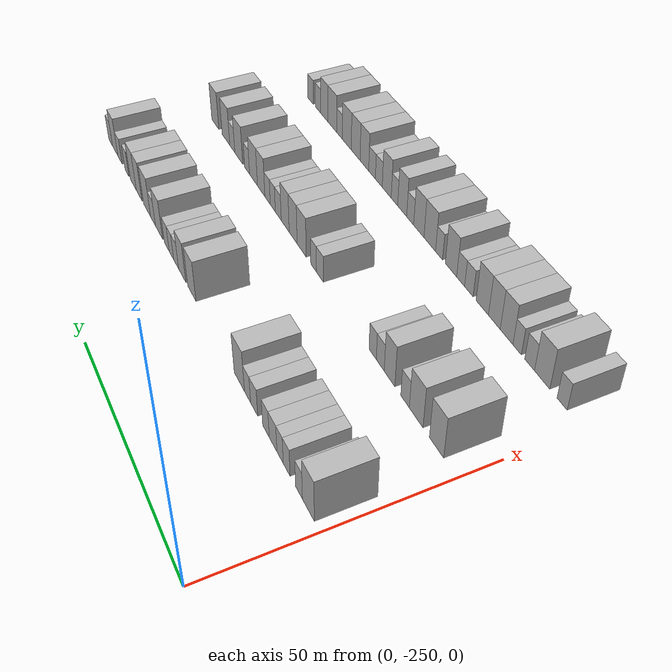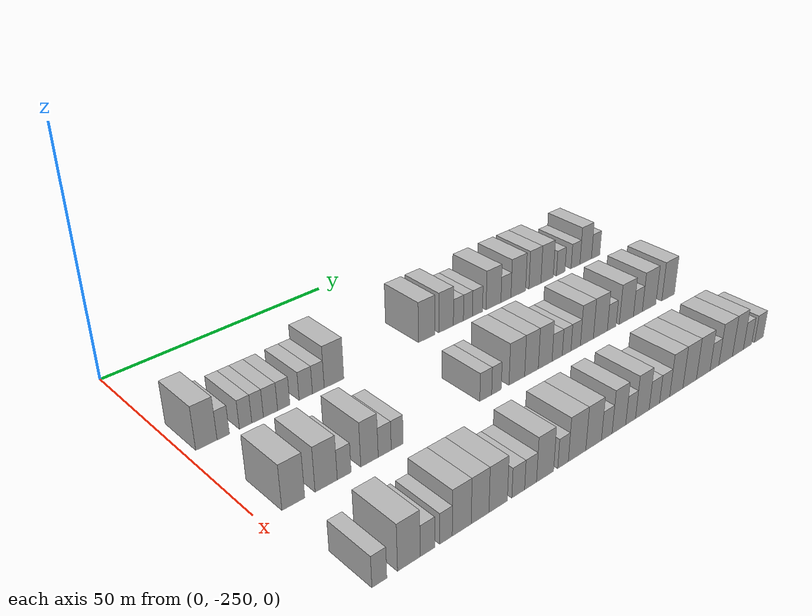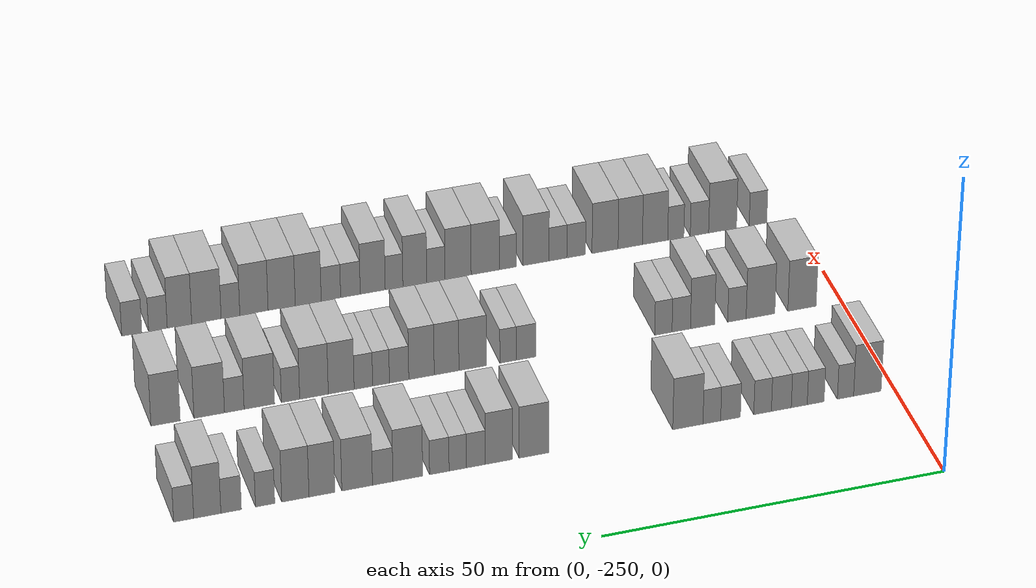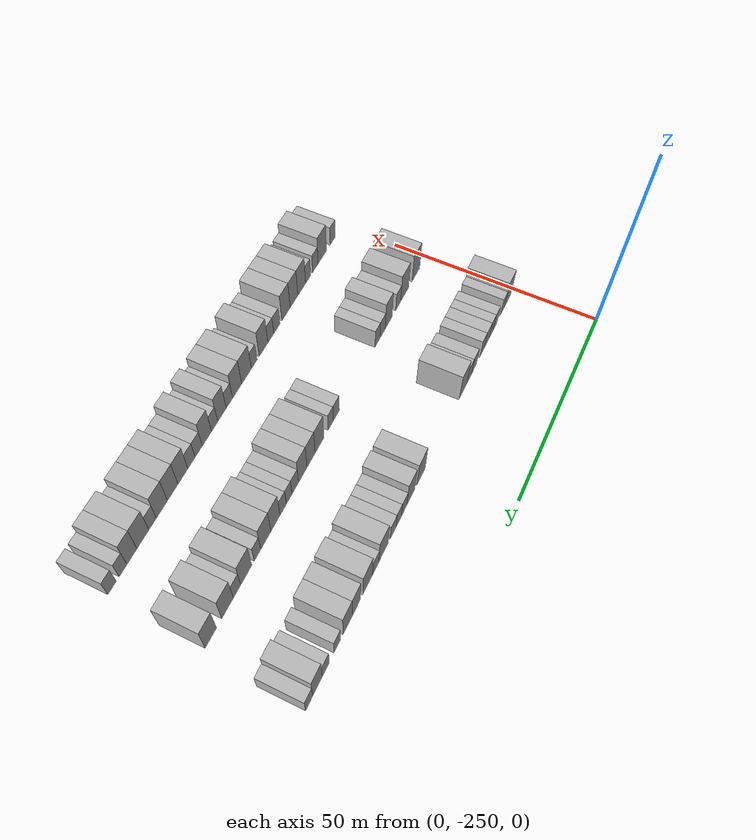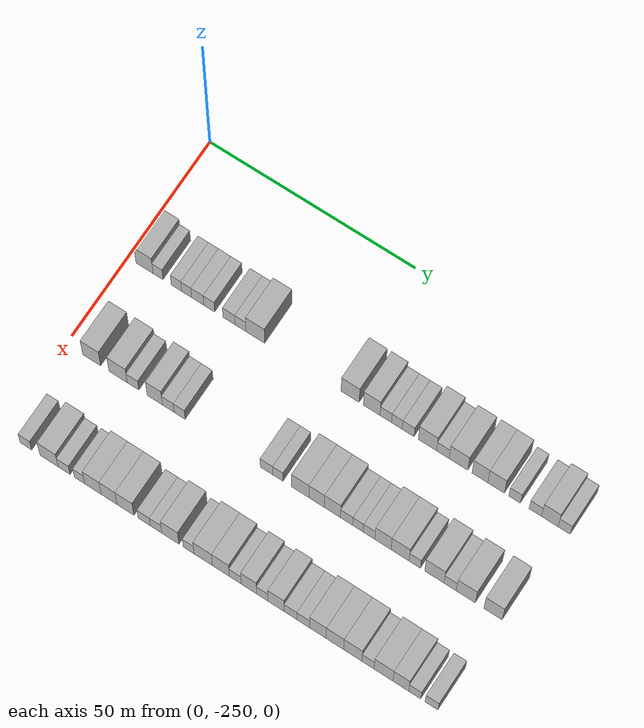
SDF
<sdf version="1.6">
 <world name="default">
  <model name="building_1">
   <static>1</static>
   <pose>25.0000 -245.9223 0 0.000000 0.000000 0.000000</pose>
   <link name="link">
    <pose>0 0 4.50 0 0 0</pose>
    <collision name="collision"><geometry><box><size>10.0000 4.1554 9.0000</size></box></geometry></collision>
    <visual name="visual">
     <cast_shadows>0</cast_shadows>
     <geometry><box><size>10.0000 4.1554 9.0000</size></box></geometry>
     <material>
      <script>
       <uri>model://HANNAS_wall/materials/scripts</uri>
       <uri>model://HANNAS_wall/materials/textures</uri>
       <name>vrc/HANNAS_wall</name>
      </script>
     </material>
    </visual>
   </link>
  </model>
  <model name="building_2">
   <static>1</static>
   <pose>25.0000 -242.6191 0 0.000000 0.000000 0.000000</pose>
   <link name="link">
    <pose>0 0 3.00 0 0 0</pose>
    <collision name="collision"><geometry><box><size>10.0000 2.4510 6.0000</size></box></geometry></collision>
    <visual name="visual">
     <cast_shadows>0</cast_shadows>
     <geometry><box><size>10.0000 2.4510 6.0000</size></box></geometry>
     <material>
      <script>
       <uri>model://HANNAS_wall/materials/scripts</uri>
       <uri>model://HANNAS_wall/materials/textures</uri>
       <name>vrc/HANNAS_wall</name>
      </script>
     </material>
    </visual>
   </link>
  </model>
  <model name="building_3">
   <static>1</static>
   <pose>25.0000 -238.1239 0 0.000000 0.000000 0.000000</pose>
   <link name="link">
    <pose>0 0 3.00 0 0 0</pose>
    <collision name="collision"><geometry><box><size>10.0000 2.5395 6.0000</size></box></geometry></collision>
    <visual name="visual">
     <cast_shadows>0</cast_shadows>
     <geometry><box><size>10.0000 2.5395 6.0000</size></box></geometry>
     <material>
      <script>
       <uri>model://HANNAS_wall/materials/scripts</uri>
       <uri>model://HANNAS_wall/materials/textures</uri>
       <name>vrc/HANNAS_wall</name>
      </script>
     </material>
    </visual>
   </link>
  </model>
  <model name="building_4">
   <static>1</static>
   <pose>25.0000 -235.6540 0 0.000000 0.000000 0.000000</pose>
   <link name="link">
    <pose>0 0 3.00 0 0 0</pose>
    <collision name="collision"><geometry><box><size>10.0000 2.4002 6.0000</size></box></geometry></collision>
    <visual name="visual">
     <cast_shadows>0</cast_shadows>
     <geometry><box><size>10.0000 2.4002 6.0000</size></box></geometry>
     <material>
      <script>
       <uri>model://HANNAS_wall/materials/scripts</uri>
       <uri>model://HANNAS_wall/materials/textures</uri>
       <name>vrc/HANNAS_wall</name>
      </script>
     </material>
    </visual>
   </link>
  </model>
  <model name="building_5">
   <static>1</static>
   <pose>25.0000 -232.9622 0 0.000000 0.000000 0.000000</pose>
   <link name="link">
    <pose>0 0 3.00 0 0 0</pose>
    <collision name="collision"><geometry><box><size>10.0000 2.9835 6.0000</size></box></geometry></collision>
    <visual name="visual">
     <cast_shadows>0</cast_shadows>
     <geometry><box><size>10.0000 2.9835 6.0000</size></box></geometry>
     <material>
      <script>
       <uri>model://HANNAS_wall/materials/scripts</uri>
       <uri>model://HANNAS_wall/materials/textures</uri>
       <name>vrc/HANNAS_wall</name>
      </script>
     </material>
    </visual>
   </link>
  </model>
  <model name="building_6">
   <static>1</static>
   <pose>25.0000 -230.1509 0 0.000000 0.000000 0.000000</pose>
   <link name="link">
    <pose>0 0 3.00 0 0 0</pose>
    <collision name="collision"><geometry><box><size>10.0000 2.6391 6.0000</size></box></geometry></collision>
    <visual name="visual">
     <cast_shadows>0</cast_shadows>
     <geometry><box><size>10.0000 2.6391 6.0000</size></box></geometry>
     <material>
      <script>
       <uri>model://HANNAS_wall/materials/scripts</uri>
       <uri>model://HANNAS_wall/materials/textures</uri>
       <name>vrc/HANNAS_wall</name>
      </script>
     </material>
    </visual>
   </link>
  </model>
  <model name="building_7">
   <static>1</static>
   <pose>25.0000 -225.3580 0 0.000000 0.000000 0.000000</pose>
   <link name="link">
    <pose>0 0 3.00 0 0 0</pose>
    <collision name="collision"><geometry><box><size>10.0000 2.9467 6.0000</size></box></geometry></collision>
    <visual name="visual">
     <cast_shadows>0</cast_shadows>
     <geometry><box><size>10.0000 2.9467 6.0000</size></box></geometry>
     <material>
      <script>
       <uri>model://HANNAS_wall/materials/scripts</uri>
       <uri>model://HANNAS_wall/materials/textures</uri>
       <name>vrc/HANNAS_wall</name>
      </script>
     </material>
    </visual>
   </link>
  </model>
  <model name="building_8">
   <static>1</static>
   <pose>25.0000 -222.5664 0 0.000000 0.000000 0.000000</pose>
   <link name="link">
    <pose>0 0 3.00 0 0 0</pose>
    <collision name="collision"><geometry><box><size>10.0000 2.6365 6.0000</size></box></geometry></collision>
    <visual name="visual">
     <cast_shadows>0</cast_shadows>
     <geometry><box><size>10.0000 2.6365 6.0000</size></box></geometry>
     <material>
      <script>
       <uri>model://HANNAS_wall/materials/scripts</uri>
       <uri>model://HANNAS_wall/materials/textures</uri>
       <name>vrc/HANNAS_wall</name>
      </script>
     </material>
    </visual>
   </link>
  </model>
  <model name="building_9">
   <static>1</static>
   <pose>25.0000 -219.0022 0 0.000000 0.000000 0.000000</pose>
   <link name="link">
    <pose>0 0 4.50 0 0 0</pose>
    <collision name="collision"><geometry><box><size>10.0000 4.4920 9.0000</size></box></geometry></collision>
    <visual name="visual">
     <cast_shadows>0</cast_shadows>
     <geometry><box><size>10.0000 4.4920 9.0000</size></box></geometry>
     <material>
      <script>
       <uri>model://HANNAS_wall/materials/scripts</uri>
       <uri>model://HANNAS_wall/materials/textures</uri>
       <name>vrc/HANNAS_wall</name>
      </script>
     </material>
    </visual>
   </link>
  </model>
  <model name="building_10">
   <static>1</static>
   <pose>25.0000 -196.2850 0 0.000000 0.000000 0.000000</pose>
   <link name="link">
    <pose>0 0 4.50 0 0 0</pose>
    <collision name="collision"><geometry><box><size>10.0000 4.3141 9.0000</size></box></geometry></collision>
    <visual name="visual">
     <cast_shadows>0</cast_shadows>
     <geometry><box><size>10.0000 4.3141 9.0000</size></box></geometry>
     <material>
      <script>
       <uri>model://HANNAS_wall/materials/scripts</uri>
       <uri>model://HANNAS_wall/materials/textures</uri>
       <name>vrc/HANNAS_wall</name>
      </script>
     </material>
    </visual>
   </link>
  </model>
  <model name="building_11">
   <static>1</static>
   <pose>25.0000 -191.1625 0 0.000000 0.000000 0.000000</pose>
   <link name="link">
    <pose>0 0 4.50 0 0 0</pose>
    <collision name="collision"><geometry><box><size>10.0000 3.9308 9.0000</size></box></geometry></collision>
    <visual name="visual">
     <cast_shadows>0</cast_shadows>
     <geometry><box><size>10.0000 3.9308 9.0000</size></box></geometry>
     <material>
      <script>
       <uri>model://HANNAS_wall/materials/scripts</uri>
       <uri>model://HANNAS_wall/materials/textures</uri>
       <name>vrc/HANNAS_wall</name>
      </script>
     </material>
    </visual>
   </link>
  </model>
  <model name="building_12">
   <static>1</static>
   <pose>25.0000 -187.8236 0 0.000000 0.000000 0.000000</pose>
   <link name="link">
    <pose>0 0 3.00 0 0 0</pose>
    <collision name="collision"><geometry><box><size>10.0000 2.7469 6.0000</size></box></geometry></collision>
    <visual name="visual">
     <cast_shadows>0</cast_shadows>
     <geometry><box><size>10.0000 2.7469 6.0000</size></box></geometry>
     <material>
      <script>
       <uri>model://HANNAS_wall/materials/scripts</uri>
       <uri>model://HANNAS_wall/materials/textures</uri>
       <name>vrc/HANNAS_wall</name>
      </script>
     </material>
    </visual>
   </link>
  </model>
  <model name="building_13">
   <static>1</static>
   <pose>25.0000 -185.1862 0 0.000000 0.000000 0.000000</pose>
   <link name="link">
    <pose>0 0 3.00 0 0 0</pose>
    <collision name="collision"><geometry><box><size>10.0000 2.5279 6.0000</size></box></geometry></collision>
    <visual name="visual">
     <cast_shadows>0</cast_shadows>
     <geometry><box><size>10.0000 2.5279 6.0000</size></box></geometry>
     <material>
      <script>
       <uri>model://HANNAS_wall/materials/scripts</uri>
       <uri>model://HANNAS_wall/materials/textures</uri>
       <name>vrc/HANNAS_wall</name>
      </script>
     </material>
    </visual>
   </link>
  </model>
  <model name="building_14">
   <static>1</static>
   <pose>25.0000 -182.5068 0 0.000000 0.000000 0.000000</pose>
   <link name="link">
    <pose>0 0 3.00 0 0 0</pose>
    <collision name="collision"><geometry><box><size>10.0000 2.8309 6.0000</size></box></geometry></collision>
    <visual name="visual">
     <cast_shadows>0</cast_shadows>
     <geometry><box><size>10.0000 2.8309 6.0000</size></box></geometry>
     <material>
      <script>
       <uri>model://HANNAS_wall/materials/scripts</uri>
       <uri>model://HANNAS_wall/materials/textures</uri>
       <name>vrc/HANNAS_wall</name>
      </script>
     </material>
    </visual>
   </link>
  </model>
  <model name="building_15">
   <static>1</static>
   <pose>25.0000 -177.9419 0 0.000000 0.000000 0.000000</pose>
   <link name="link">
    <pose>0 0 4.50 0 0 0</pose>
    <collision name="collision"><geometry><box><size>10.0000 4.2990 9.0000</size></box></geometry></collision>
    <visual name="visual">
     <cast_shadows>0</cast_shadows>
     <geometry><box><size>10.0000 4.2990 9.0000</size></box></geometry>
     <material>
      <script>
       <uri>model://HANNAS_wall/materials/scripts</uri>
       <uri>model://HANNAS_wall/materials/textures</uri>
       <name>vrc/HANNAS_wall</name>
      </script>
     </material>
    </visual>
   </link>
  </model>
  <model name="building_16">
   <static>1</static>
   <pose>25.0000 -174.3163 0 0.000000 0.000000 0.000000</pose>
   <link name="link">
    <pose>0 0 3.00 0 0 0</pose>
    <collision name="collision"><geometry><box><size>10.0000 2.9522 6.0000</size></box></geometry></collision>
    <visual name="visual">
     <cast_shadows>0</cast_shadows>
     <geometry><box><size>10.0000 2.9522 6.0000</size></box></geometry>
     <material>
      <script>
       <uri>model://HANNAS_wall/materials/scripts</uri>
       <uri>model://HANNAS_wall/materials/textures</uri>
       <name>vrc/HANNAS_wall</name>
      </script>
     </material>
    </visual>
   </link>
  </model>
  <model name="building_17">
   <static>1</static>
   <pose>25.0000 -170.6362 0 0.000000 0.000000 0.000000</pose>
   <link name="link">
    <pose>0 0 4.50 0 0 0</pose>
    <collision name="collision"><geometry><box><size>10.0000 4.4079 9.0000</size></box></geometry></collision>
    <visual name="visual">
     <cast_shadows>0</cast_shadows>
     <geometry><box><size>10.0000 4.4079 9.0000</size></box></geometry>
     <material>
      <script>
       <uri>model://HANNAS_wall/materials/scripts</uri>
       <uri>model://HANNAS_wall/materials/textures</uri>
       <name>vrc/HANNAS_wall</name>
      </script>
     </material>
    </visual>
   </link>
  </model>
  <model name="building_18">
   <static>1</static>
   <pose>25.0000 -165.5775 0 0.000000 0.000000 0.000000</pose>
   <link name="link">
    <pose>0 0 4.50 0 0 0</pose>
    <collision name="collision"><geometry><box><size>10.0000 3.7096 9.0000</size></box></geometry></collision>
    <visual name="visual">
     <cast_shadows>0</cast_shadows>
     <geometry><box><size>10.0000 3.7096 9.0000</size></box></geometry>
     <material>
      <script>
       <uri>model://HANNAS_wall/materials/scripts</uri>
       <uri>model://HANNAS_wall/materials/textures</uri>
       <name>vrc/HANNAS_wall</name>
      </script>
     </material>
    </visual>
   </link>
  </model>
  <model name="building_19">
   <static>1</static>
   <pose>25.0000 -161.7763 0 0.000000 0.000000 0.000000</pose>
   <link name="link">
    <pose>0 0 4.50 0 0 0</pose>
    <collision name="collision"><geometry><box><size>10.0000 3.8926 9.0000</size></box></geometry></collision>
    <visual name="visual">
     <cast_shadows>0</cast_shadows>
     <geometry><box><size>10.0000 3.8926 9.0000</size></box></geometry>
     <material>
      <script>
       <uri>model://HANNAS_wall/materials/scripts</uri>
       <uri>model://HANNAS_wall/materials/textures</uri>
       <name>vrc/HANNAS_wall</name>
      </script>
     </material>
    </visual>
   </link>
  </model>
  <model name="building_20">
   <static>1</static>
   <pose>25.0000 -157.4546 0 0.000000 0.000000 0.000000</pose>
   <link name="link">
    <pose>0 0 3.00 0 0 0</pose>
    <collision name="collision"><geometry><box><size>10.0000 2.7508 6.0000</size></box></geometry></collision>
    <visual name="visual">
     <cast_shadows>0</cast_shadows>
     <geometry><box><size>10.0000 2.7508 6.0000</size></box></geometry>
     <material>
      <script>
       <uri>model://HANNAS_wall/materials/scripts</uri>
       <uri>model://HANNAS_wall/materials/textures</uri>
       <name>vrc/HANNAS_wall</name>
      </script>
     </material>
    </visual>
   </link>
  </model>
  <model name="building_21">
   <static>1</static>
   <pose>25.0000 -152.6201 0 0.000000 0.000000 0.000000</pose>
   <link name="link">
    <pose>0 0 3.00 0 0 0</pose>
    <collision name="collision"><geometry><box><size>10.0000 2.9182 6.0000</size></box></geometry></collision>
    <visual name="visual">
     <cast_shadows>0</cast_shadows>
     <geometry><box><size>10.0000 2.9182 6.0000</size></box></geometry>
     <material>
      <script>
       <uri>model://HANNAS_wall/materials/scripts</uri>
       <uri>model://HANNAS_wall/materials/textures</uri>
       <name>vrc/HANNAS_wall</name>
      </script>
     </material>
    </visual>
   </link>
  </model>
  <model name="building_22">
   <static>1</static>
   <pose>25.0000 -149.2348 0 0.000000 0.000000 0.000000</pose>
   <link name="link">
    <pose>0 0 4.50 0 0 0</pose>
    <collision name="collision"><geometry><box><size>10.0000 3.8524 9.0000</size></box></geometry></collision>
    <visual name="visual">
     <cast_shadows>0</cast_shadows>
     <geometry><box><size>10.0000 3.8524 9.0000</size></box></geometry>
     <material>
      <script>
       <uri>model://HANNAS_wall/materials/scripts</uri>
       <uri>model://HANNAS_wall/materials/textures</uri>
       <name>vrc/HANNAS_wall</name>
      </script>
     </material>
    </visual>
   </link>
  </model>
  <model name="building_23">
   <static>1</static>
   <pose>25.0000 -145.8840 0 0.000000 0.000000 0.000000</pose>
   <link name="link">
    <pose>0 0 3.00 0 0 0</pose>
    <collision name="collision"><geometry><box><size>10.0000 2.8490 6.0000</size></box></geometry></collision>
    <visual name="visual">
     <cast_shadows>0</cast_shadows>
     <geometry><box><size>10.0000 2.8490 6.0000</size></box></geometry>
     <material>
      <script>
       <uri>model://HANNAS_wall/materials/scripts</uri>
       <uri>model://HANNAS_wall/materials/textures</uri>
       <name>vrc/HANNAS_wall</name>
      </script>
     </material>
    </visual>
   </link>
  </model>
  <model name="building_126">
   <static>1</static>
   <pose>47.0000 -243.8169 0 0.000000 0.000000 0.000000</pose>
   <link name="link">
    <pose>0 0 4.50 0 0 0</pose>
    <collision name="collision"><geometry><box><size>10.0000 4.3663 9.0000</size></box></geometry></collision>
    <visual name="visual">
     <cast_shadows>0</cast_shadows>
     <geometry><box><size>10.0000 4.3663 9.0000</size></box></geometry>
     <material>
      <script>
       <uri>model://HANNAS_wall/materials/scripts</uri>
       <uri>model://HANNAS_wall/materials/textures</uri>
       <name>vrc/HANNAS_wall</name>
      </script>
     </material>
    </visual>
   </link>
  </model>
  <model name="building_127">
   <static>1</static>
   <pose>47.0000 -237.4244 0 0.000000 0.000000 0.000000</pose>
   <link name="link">
    <pose>0 0 4.50 0 0 0</pose>
    <collision name="collision"><geometry><box><size>10.0000 4.4186 9.0000</size></box></geometry></collision>
    <visual name="visual">
     <cast_shadows>0</cast_shadows>
     <geometry><box><size>10.0000 4.4186 9.0000</size></box></geometry>
     <material>
      <script>
       <uri>model://HANNAS_wall/materials/scripts</uri>
       <uri>model://HANNAS_wall/materials/textures</uri>
       <name>vrc/HANNAS_wall</name>
      </script>
     </material>
    </visual>
   </link>
  </model>
  <model name="building_128">
   <static>1</static>
   <pose>47.0000 -233.8005 0 0.000000 0.000000 0.000000</pose>
   <link name="link">
    <pose>0 0 3.00 0 0 0</pose>
    <collision name="collision"><geometry><box><size>10.0000 2.8291 6.0000</size></box></geometry></collision>
    <visual name="visual">
     <cast_shadows>0</cast_shadows>
     <geometry><box><size>10.0000 2.8291 6.0000</size></box></geometry>
     <material>
      <script>
       <uri>model://HANNAS_wall/materials/scripts</uri>
       <uri>model://HANNAS_wall/materials/textures</uri>
       <name>vrc/HANNAS_wall</name>
      </script>
     </material>
    </visual>
   </link>
  </model>
  <model name="building_129">
   <static>1</static>
   <pose>47.0000 -228.5411 0 0.000000 0.000000 0.000000</pose>
   <link name="link">
    <pose>0 0 4.50 0 0 0</pose>
    <collision name="collision"><geometry><box><size>10.0000 3.6897 9.0000</size></box></geometry></collision>
    <visual name="visual">
     <cast_shadows>0</cast_shadows>
     <geometry><box><size>10.0000 3.6897 9.0000</size></box></geometry>
     <material>
      <script>
       <uri>model://HANNAS_wall/materials/scripts</uri>
       <uri>model://HANNAS_wall/materials/textures</uri>
       <name>vrc/HANNAS_wall</name>
      </script>
     </material>
    </visual>
   </link>
  </model>
  <model name="building_130">
   <static>1</static>
   <pose>47.0000 -225.2898 0 0.000000 0.000000 0.000000</pose>
   <link name="link">
    <pose>0 0 3.00 0 0 0</pose>
    <collision name="collision"><geometry><box><size>10.0000 2.8127 6.0000</size></box></geometry></collision>
    <visual name="visual">
     <cast_shadows>0</cast_shadows>
     <geometry><box><size>10.0000 2.8127 6.0000</size></box></geometry>
     <material>
      <script>
       <uri>model://HANNAS_wall/materials/scripts</uri>
       <uri>model://HANNAS_wall/materials/textures</uri>
       <name>vrc/HANNAS_wall</name>
      </script>
     </material>
    </visual>
   </link>
  </model>
  <model name="building_131">
   <static>1</static>
   <pose>47.0000 -222.5628 0 0.000000 0.000000 0.000000</pose>
   <link name="link">
    <pose>0 0 3.00 0 0 0</pose>
    <collision name="collision"><geometry><box><size>10.0000 2.6414 6.0000</size></box></geometry></collision>
    <visual name="visual">
     <cast_shadows>0</cast_shadows>
     <geometry><box><size>10.0000 2.6414 6.0000</size></box></geometry>
     <material>
      <script>
       <uri>model://HANNAS_wall/materials/scripts</uri>
       <uri>model://HANNAS_wall/materials/textures</uri>
       <name>vrc/HANNAS_wall</name>
      </script>
     </material>
    </visual>
   </link>
  </model>
  <model name="building_132">
   <static>1</static>
   <pose>47.0000 -201.7848 0 0.000000 0.000000 0.000000</pose>
   <link name="link">
    <pose>0 0 3.00 0 0 0</pose>
    <collision name="collision"><geometry><box><size>10.0000 2.9715 6.0000</size></box></geometry></collision>
    <visual name="visual">
     <cast_shadows>0</cast_shadows>
     <geometry><box><size>10.0000 2.9715 6.0000</size></box></geometry>
     <material>
      <script>
       <uri>model://HANNAS_wall/materials/scripts</uri>
       <uri>model://HANNAS_wall/materials/textures</uri>
       <name>vrc/HANNAS_wall</name>
      </script>
     </material>
    </visual>
   </link>
  </model>
  <model name="building_133">
   <static>1</static>
   <pose>47.0000 -199.0794 0 0.000000 0.000000 0.000000</pose>
   <link name="link">
    <pose>0 0 3.00 0 0 0</pose>
    <collision name="collision"><geometry><box><size>10.0000 2.4394 6.0000</size></box></geometry></collision>
    <visual name="visual">
     <cast_shadows>0</cast_shadows>
     <geometry><box><size>10.0000 2.4394 6.0000</size></box></geometry>
     <material>
      <script>
       <uri>model://HANNAS_wall/materials/scripts</uri>
       <uri>model://HANNAS_wall/materials/textures</uri>
       <name>vrc/HANNAS_wall</name>
      </script>
     </material>
    </visual>
   </link>
  </model>
  <model name="building_134">
   <static>1</static>
   <pose>47.0000 -193.8011 0 0.000000 0.000000 0.000000</pose>
   <link name="link">
    <pose>0 0 4.50 0 0 0</pose>
    <collision name="collision"><geometry><box><size>10.0000 4.1172 9.0000</size></box></geometry></collision>
    <visual name="visual">
     <cast_shadows>0</cast_shadows>
     <geometry><box><size>10.0000 4.1172 9.0000</size></box></geometry>
     <material>
      <script>
       <uri>model://HANNAS_wall/materials/scripts</uri>
       <uri>model://HANNAS_wall/materials/textures</uri>
       <name>vrc/HANNAS_wall</name>
      </script>
     </material>
    </visual>
   </link>
  </model>
  <model name="building_135">
   <static>1</static>
   <pose>47.0000 -189.9022 0 0.000000 0.000000 0.000000</pose>
   <link name="link">
    <pose>0 0 4.50 0 0 0</pose>
    <collision name="collision"><geometry><box><size>10.0000 3.6807 9.0000</size></box></geometry></collision>
    <visual name="visual">
     <cast_shadows>0</cast_shadows>
     <geometry><box><size>10.0000 3.6807 9.0000</size></box></geometry>
     <material>
      <script>
       <uri>model://HANNAS_wall/materials/scripts</uri>
       <uri>model://HANNAS_wall/materials/textures</uri>
       <name>vrc/HANNAS_wall</name>
      </script>
     </material>
    </visual>
   </link>
  </model>
  <model name="building_136">
   <static>1</static>
   <pose>47.0000 -186.1696 0 0.000000 0.000000 0.000000</pose>
   <link name="link">
    <pose>0 0 4.50 0 0 0</pose>
    <collision name="collision"><geometry><box><size>10.0000 3.7844 9.0000</size></box></geometry></collision>
    <visual name="visual">
     <cast_shadows>0</cast_shadows>
     <geometry><box><size>10.0000 3.7844 9.0000</size></box></geometry>
     <material>
      <script>
       <uri>model://HANNAS_wall/materials/scripts</uri>
       <uri>model://HANNAS_wall/materials/textures</uri>
       <name>vrc/HANNAS_wall</name>
      </script>
     </material>
    </visual>
   </link>
  </model>
  <model name="building_137">
   <static>1</static>
   <pose>47.0000 -182.8433 0 0.000000 0.000000 0.000000</pose>
   <link name="link">
    <pose>0 0 3.00 0 0 0</pose>
    <collision name="collision"><geometry><box><size>10.0000 2.8682 6.0000</size></box></geometry></collision>
    <visual name="visual">
     <cast_shadows>0</cast_shadows>
     <geometry><box><size>10.0000 2.8682 6.0000</size></box></geometry>
     <material>
      <script>
       <uri>model://HANNAS_wall/materials/scripts</uri>
       <uri>model://HANNAS_wall/materials/textures</uri>
       <name>vrc/HANNAS_wall</name>
      </script>
     </material>
    </visual>
   </link>
  </model>
  <model name="building_138">
   <static>1</static>
   <pose>47.0000 -180.1672 0 0.000000 0.000000 0.000000</pose>
   <link name="link">
    <pose>0 0 3.00 0 0 0</pose>
    <collision name="collision"><geometry><box><size>10.0000 2.4840 6.0000</size></box></geometry></collision>
    <visual name="visual">
     <cast_shadows>0</cast_shadows>
     <geometry><box><size>10.0000 2.4840 6.0000</size></box></geometry>
     <material>
      <script>
       <uri>model://HANNAS_wall/materials/scripts</uri>
       <uri>model://HANNAS_wall/materials/textures</uri>
       <name>vrc/HANNAS_wall</name>
      </script>
     </material>
    </visual>
   </link>
  </model>
  <model name="building_139">
   <static>1</static>
   <pose>47.0000 -177.5576 0 0.000000 0.000000 0.000000</pose>
   <link name="link">
    <pose>0 0 3.00 0 0 0</pose>
    <collision name="collision"><geometry><box><size>10.0000 2.7351 6.0000</size></box></geometry></collision>
    <visual name="visual">
     <cast_shadows>0</cast_shadows>
     <geometry><box><size>10.0000 2.7351 6.0000</size></box></geometry>
     <material>
      <script>
       <uri>model://HANNAS_wall/materials/scripts</uri>
       <uri>model://HANNAS_wall/materials/textures</uri>
       <name>vrc/HANNAS_wall</name>
      </script>
     </material>
    </visual>
   </link>
  </model>
  <model name="building_140">
   <static>1</static>
   <pose>47.0000 -174.2832 0 0.000000 0.000000 0.000000</pose>
   <link name="link">
    <pose>0 0 4.50 0 0 0</pose>
    <collision name="collision"><geometry><box><size>10.0000 3.8138 9.0000</size></box></geometry></collision>
    <visual name="visual">
     <cast_shadows>0</cast_shadows>
     <geometry><box><size>10.0000 3.8138 9.0000</size></box></geometry>
     <material>
      <script>
       <uri>model://HANNAS_wall/materials/scripts</uri>
       <uri>model://HANNAS_wall/materials/textures</uri>
       <name>vrc/HANNAS_wall</name>
      </script>
     </material>
    </visual>
   </link>
  </model>
  <model name="building_141">
   <static>1</static>
   <pose>47.0000 -170.2713 0 0.000000 0.000000 0.000000</pose>
   <link name="link">
    <pose>0 0 4.50 0 0 0</pose>
    <collision name="collision"><geometry><box><size>10.0000 4.2100 9.0000</size></box></geometry></collision>
    <visual name="visual">
     <cast_shadows>0</cast_shadows>
     <geometry><box><size>10.0000 4.2100 9.0000</size></box></geometry>
     <material>
      <script>
       <uri>model://HANNAS_wall/materials/scripts</uri>
       <uri>model://HANNAS_wall/materials/textures</uri>
       <name>vrc/HANNAS_wall</name>
      </script>
     </material>
    </visual>
   </link>
  </model>
  <model name="building_142">
   <static>1</static>
   <pose>47.0000 -166.8256 0 0.000000 0.000000 0.000000</pose>
   <link name="link">
    <pose>0 0 3.00 0 0 0</pose>
    <collision name="collision"><geometry><box><size>10.0000 2.6813 6.0000</size></box></geometry></collision>
    <visual name="visual">
     <cast_shadows>0</cast_shadows>
     <geometry><box><size>10.0000 2.6813 6.0000</size></box></geometry>
     <material>
      <script>
       <uri>model://HANNAS_wall/materials/scripts</uri>
       <uri>model://HANNAS_wall/materials/textures</uri>
       <name>vrc/HANNAS_wall</name>
      </script>
     </material>
    </visual>
   </link>
  </model>
  <model name="building_143">
   <static>1</static>
   <pose>47.0000 -162.2559 0 0.000000 0.000000 0.000000</pose>
   <link name="link">
    <pose>0 0 4.50 0 0 0</pose>
    <collision name="collision"><geometry><box><size>10.0000 4.4582 9.0000</size></box></geometry></collision>
    <visual name="visual">
     <cast_shadows>0</cast_shadows>
     <geometry><box><size>10.0000 4.4582 9.0000</size></box></geometry>
     <material>
      <script>
       <uri>model://HANNAS_wall/materials/scripts</uri>
       <uri>model://HANNAS_wall/materials/textures</uri>
       <name>vrc/HANNAS_wall</name>
      </script>
     </material>
    </visual>
   </link>
  </model>
  <model name="building_144">
   <static>1</static>
   <pose>47.0000 -158.5936 0 0.000000 0.000000 0.000000</pose>
   <link name="link">
    <pose>0 0 3.00 0 0 0</pose>
    <collision name="collision"><geometry><box><size>10.0000 2.8662 6.0000</size></box></geometry></collision>
    <visual name="visual">
     <cast_shadows>0</cast_shadows>
     <geometry><box><size>10.0000 2.8662 6.0000</size></box></geometry>
     <material>
      <script>
       <uri>model://HANNAS_wall/materials/scripts</uri>
       <uri>model://HANNAS_wall/materials/textures</uri>
       <name>vrc/HANNAS_wall</name>
      </script>
     </material>
    </visual>
   </link>
  </model>
  <model name="building_145">
   <static>1</static>
   <pose>47.0000 -154.9402 0 0.000000 0.000000 0.000000</pose>
   <link name="link">
    <pose>0 0 4.50 0 0 0</pose>
    <collision name="collision"><geometry><box><size>10.0000 4.4407 9.0000</size></box></geometry></collision>
    <visual name="visual">
     <cast_shadows>0</cast_shadows>
     <geometry><box><size>10.0000 4.4407 9.0000</size></box></geometry>
     <material>
      <script>
       <uri>model://HANNAS_wall/materials/scripts</uri>
       <uri>model://HANNAS_wall/materials/textures</uri>
       <name>vrc/HANNAS_wall</name>
      </script>
     </material>
    </visual>
   </link>
  </model>
  <model name="building_146">
   <static>1</static>
   <pose>47.0000 -148.5975 0 0.000000 0.000000 0.000000</pose>
   <link name="link">
    <pose>0 0 4.50 0 0 0</pose>
    <collision name="collision"><geometry><box><size>10.0000 4.2447 9.0000</size></box></geometry></collision>
    <visual name="visual">
     <cast_shadows>0</cast_shadows>
     <geometry><box><size>10.0000 4.2447 9.0000</size></box></geometry>
     <material>
      <script>
       <uri>model://HANNAS_wall/materials/scripts</uri>
       <uri>model://HANNAS_wall/materials/textures</uri>
       <name>vrc/HANNAS_wall</name>
      </script>
     </material>
    </visual>
   </link>
  </model>
  <model name="building_240">
   <static>1</static>
   <pose>69.0000 -244.6138 0 0.000000 0.000000 0.000000</pose>
   <link name="link">
    <pose>0 0 3.00 0 0 0</pose>
    <collision name="collision"><geometry><box><size>10.0000 2.7724 6.0000</size></box></geometry></collision>
    <visual name="visual">
     <cast_shadows>0</cast_shadows>
     <geometry><box><size>10.0000 2.7724 6.0000</size></box></geometry>
     <material>
      <script>
       <uri>model://HANNAS_wall/materials/scripts</uri>
       <uri>model://HANNAS_wall/materials/textures</uri>
       <name>vrc/HANNAS_wall</name>
      </script>
     </material>
    </visual>
   </link>
  </model>
  <model name="building_241">
   <static>1</static>
   <pose>69.0000 -239.0393 0 0.000000 0.000000 0.000000</pose>
   <link name="link">
    <pose>0 0 4.50 0 0 0</pose>
    <collision name="collision"><geometry><box><size>10.0000 4.3765 9.0000</size></box></geometry></collision>
    <visual name="visual">
     <cast_shadows>0</cast_shadows>
     <geometry><box><size>10.0000 4.3765 9.0000</size></box></geometry>
     <material>
      <script>
       <uri>model://HANNAS_wall/materials/scripts</uri>
       <uri>model://HANNAS_wall/materials/textures</uri>
       <name>vrc/HANNAS_wall</name>
      </script>
     </material>
    </visual>
   </link>
  </model>
  <model name="building_242">
   <static>1</static>
   <pose>69.0000 -235.4121 0 0.000000 0.000000 0.000000</pose>
   <link name="link">
    <pose>0 0 3.00 0 0 0</pose>
    <collision name="collision"><geometry><box><size>10.0000 2.8780 6.0000</size></box></geometry></collision>
    <visual name="visual">
     <cast_shadows>0</cast_shadows>
     <geometry><box><size>10.0000 2.8780 6.0000</size></box></geometry>
     <material>
      <script>
       <uri>model://HANNAS_wall/materials/scripts</uri>
       <uri>model://HANNAS_wall/materials/textures</uri>
       <name>vrc/HANNAS_wall</name>
      </script>
     </material>
    </visual>
   </link>
  </model>
  <model name="building_243">
   <static>1</static>
   <pose>69.0000 -231.7092 0 0.000000 0.000000 0.000000</pose>
   <link name="link">
    <pose>0 0 3.00 0 0 0</pose>
    <collision name="collision"><geometry><box><size>10.0000 2.5277 6.0000</size></box></geometry></collision>
    <visual name="visual">
     <cast_shadows>0</cast_shadows>
     <geometry><box><size>10.0000 2.5277 6.0000</size></box></geometry>
     <material>
      <script>
       <uri>model://HANNAS_wall/materials/scripts</uri>
       <uri>model://HANNAS_wall/materials/textures</uri>
       <name>vrc/HANNAS_wall</name>
      </script>
     </material>
    </visual>
   </link>
  </model>
  <model name="building_244">
   <static>1</static>
   <pose>69.0000 -228.4696 0 0.000000 0.000000 0.000000</pose>
   <link name="link">
    <pose>0 0 4.50 0 0 0</pose>
    <collision name="collision"><geometry><box><size>10.0000 3.9514 9.0000</size></box></geometry></collision>
    <visual name="visual">
     <cast_shadows>0</cast_shadows>
     <geometry><box><size>10.0000 3.9514 9.0000</size></box></geometry>
     <material>
      <script>
       <uri>model://HANNAS_wall/materials/scripts</uri>
       <uri>model://HANNAS_wall/materials/textures</uri>
       <name>vrc/HANNAS_wall</name>
      </script>
     </material>
    </visual>
   </link>
  </model>
  <model name="building_245">
   <static>1</static>
   <pose>69.0000 -224.5998 0 0.000000 0.000000 0.000000</pose>
   <link name="link">
    <pose>0 0 4.50 0 0 0</pose>
    <collision name="collision"><geometry><box><size>10.0000 3.7883 9.0000</size></box></geometry></collision>
    <visual name="visual">
     <cast_shadows>0</cast_shadows>
     <geometry><box><size>10.0000 3.7883 9.0000</size></box></geometry>
     <material>
      <script>
       <uri>model://HANNAS_wall/materials/scripts</uri>
       <uri>model://HANNAS_wall/materials/textures</uri>
       <name>vrc/HANNAS_wall</name>
      </script>
     </material>
    </visual>
   </link>
  </model>
  <model name="building_246">
   <static>1</static>
   <pose>69.0000 -220.6797 0 0.000000 0.000000 0.000000</pose>
   <link name="link">
    <pose>0 0 4.50 0 0 0</pose>
    <collision name="collision"><geometry><box><size>10.0000 4.0520 9.0000</size></box></geometry></collision>
    <visual name="visual">
     <cast_shadows>0</cast_shadows>
     <geometry><box><size>10.0000 4.0520 9.0000</size></box></geometry>
     <material>
      <script>
       <uri>model://HANNAS_wall/materials/scripts</uri>
       <uri>model://HANNAS_wall/materials/textures</uri>
       <name>vrc/HANNAS_wall</name>
      </script>
     </material>
    </visual>
   </link>
  </model>
  <model name="building_247">
   <static>1</static>
   <pose>69.0000 -216.1997 0 0.000000 0.000000 0.000000</pose>
   <link name="link">
    <pose>0 0 3.00 0 0 0</pose>
    <collision name="collision"><geometry><box><size>10.0000 2.9080 6.0000</size></box></geometry></collision>
    <visual name="visual">
     <cast_shadows>0</cast_shadows>
     <geometry><box><size>10.0000 2.9080 6.0000</size></box></geometry>
     <material>
      <script>
       <uri>model://HANNAS_wall/materials/scripts</uri>
       <uri>model://HANNAS_wall/materials/textures</uri>
       <name>vrc/HANNAS_wall</name>
      </script>
     </material>
    </visual>
   </link>
  </model>
  <model name="building_248">
   <static>1</static>
   <pose>69.0000 -213.3710 0 0.000000 0.000000 0.000000</pose>
   <link name="link">
    <pose>0 0 3.00 0 0 0</pose>
    <collision name="collision"><geometry><box><size>10.0000 2.7492 6.0000</size></box></geometry></collision>
    <visual name="visual">
     <cast_shadows>0</cast_shadows>
     <geometry><box><size>10.0000 2.7492 6.0000</size></box></geometry>
     <material>
      <script>
       <uri>model://HANNAS_wall/materials/scripts</uri>
       <uri>model://HANNAS_wall/materials/textures</uri>
       <name>vrc/HANNAS_wall</name>
      </script>
     </material>
    </visual>
   </link>
  </model>
  <model name="building_249">
   <static>1</static>
   <pose>69.0000 -209.9709 0 0.000000 0.000000 0.000000</pose>
   <link name="link">
    <pose>0 0 4.50 0 0 0</pose>
    <collision name="collision"><geometry><box><size>10.0000 4.0511 9.0000</size></box></geometry></collision>
    <visual name="visual">
     <cast_shadows>0</cast_shadows>
     <geometry><box><size>10.0000 4.0511 9.0000</size></box></geometry>
     <material>
      <script>
       <uri>model://HANNAS_wall/materials/scripts</uri>
       <uri>model://HANNAS_wall/materials/textures</uri>
       <name>vrc/HANNAS_wall</name>
      </script>
     </material>
    </visual>
   </link>
  </model>
  <model name="building_250">
   <static>1</static>
   <pose>69.0000 -205.6576 0 0.000000 0.000000 0.000000</pose>
   <link name="link">
    <pose>0 0 3.00 0 0 0</pose>
    <collision name="collision"><geometry><box><size>10.0000 2.5753 6.0000</size></box></geometry></collision>
    <visual name="visual">
     <cast_shadows>0</cast_shadows>
     <geometry><box><size>10.0000 2.5753 6.0000</size></box></geometry>
     <material>
      <script>
       <uri>model://HANNAS_wall/materials/scripts</uri>
       <uri>model://HANNAS_wall/materials/textures</uri>
       <name>vrc/HANNAS_wall</name>
      </script>
     </material>
    </visual>
   </link>
  </model>
  <model name="building_251">
   <static>1</static>
   <pose>69.0000 -202.1908 0 0.000000 0.000000 0.000000</pose>
   <link name="link">
    <pose>0 0 4.50 0 0 0</pose>
    <collision name="collision"><geometry><box><size>10.0000 4.3583 9.0000</size></box></geometry></collision>
    <visual name="visual">
     <cast_shadows>0</cast_shadows>
     <geometry><box><size>10.0000 4.3583 9.0000</size></box></geometry>
     <material>
      <script>
       <uri>model://HANNAS_wall/materials/scripts</uri>
       <uri>model://HANNAS_wall/materials/textures</uri>
       <name>vrc/HANNAS_wall</name>
      </script>
     </material>
    </visual>
   </link>
  </model>
  <model name="building_252">
   <static>1</static>
   <pose>69.0000 -198.0100 0 0.000000 0.000000 0.000000</pose>
   <link name="link">
    <pose>0 0 4.50 0 0 0</pose>
    <collision name="collision"><geometry><box><size>10.0000 4.0035 9.0000</size></box></geometry></collision>
    <visual name="visual">
     <cast_shadows>0</cast_shadows>
     <geometry><box><size>10.0000 4.0035 9.0000</size></box></geometry>
     <material>
      <script>
       <uri>model://HANNAS_wall/materials/scripts</uri>
       <uri>model://HANNAS_wall/materials/textures</uri>
       <name>vrc/HANNAS_wall</name>
      </script>
     </material>
    </visual>
   </link>
  </model>
  <model name="building_253">
   <static>1</static>
   <pose>69.0000 -194.6189 0 0.000000 0.000000 0.000000</pose>
   <link name="link">
    <pose>0 0 3.00 0 0 0</pose>
    <collision name="collision"><geometry><box><size>10.0000 2.7787 6.0000</size></box></geometry></collision>
    <visual name="visual">
     <cast_shadows>0</cast_shadows>
     <geometry><box><size>10.0000 2.7787 6.0000</size></box></geometry>
     <material>
      <script>
       <uri>model://HANNAS_wall/materials/scripts</uri>
       <uri>model://HANNAS_wall/materials/textures</uri>
       <name>vrc/HANNAS_wall</name>
      </script>
     </material>
    </visual>
   </link>
  </model>
  <model name="building_254">
   <static>1</static>
   <pose>69.0000 -191.4045 0 0.000000 0.000000 0.000000</pose>
   <link name="link">
    <pose>0 0 4.50 0 0 0</pose>
    <collision name="collision"><geometry><box><size>10.0000 3.6499 9.0000</size></box></geometry></collision>
    <visual name="visual">
     <cast_shadows>0</cast_shadows>
     <geometry><box><size>10.0000 3.6499 9.0000</size></box></geometry>
     <material>
      <script>
       <uri>model://HANNAS_wall/materials/scripts</uri>
       <uri>model://HANNAS_wall/materials/textures</uri>
       <name>vrc/HANNAS_wall</name>
      </script>
     </material>
    </visual>
   </link>
  </model>
  <model name="building_255">
   <static>1</static>
   <pose>69.0000 -188.2368 0 0.000000 0.000000 0.000000</pose>
   <link name="link">
    <pose>0 0 3.00 0 0 0</pose>
    <collision name="collision"><geometry><box><size>10.0000 2.6856 6.0000</size></box></geometry></collision>
    <visual name="visual">
     <cast_shadows>0</cast_shadows>
     <geometry><box><size>10.0000 2.6856 6.0000</size></box></geometry>
     <material>
      <script>
       <uri>model://HANNAS_wall/materials/scripts</uri>
       <uri>model://HANNAS_wall/materials/textures</uri>
       <name>vrc/HANNAS_wall</name>
      </script>
     </material>
    </visual>
   </link>
  </model>
  <model name="building_256">
   <static>1</static>
   <pose>69.0000 -184.9950 0 0.000000 0.000000 0.000000</pose>
   <link name="link">
    <pose>0 0 4.50 0 0 0</pose>
    <collision name="collision"><geometry><box><size>10.0000 3.7980 9.0000</size></box></geometry></collision>
    <visual name="visual">
     <cast_shadows>0</cast_shadows>
     <geometry><box><size>10.0000 3.7980 9.0000</size></box></geometry>
     <material>
      <script>
       <uri>model://HANNAS_wall/materials/scripts</uri>
       <uri>model://HANNAS_wall/materials/textures</uri>
       <name>vrc/HANNAS_wall</name>
      </script>
     </material>
    </visual>
   </link>
  </model>
  <model name="building_257">
   <static>1</static>
   <pose>69.0000 -181.6118 0 0.000000 0.000000 0.000000</pose>
   <link name="link">
    <pose>0 0 3.00 0 0 0</pose>
    <collision name="collision"><geometry><box><size>10.0000 2.9683 6.0000</size></box></geometry></collision>
    <visual name="visual">
     <cast_shadows>0</cast_shadows>
     <geometry><box><size>10.0000 2.9683 6.0000</size></box></geometry>
     <material>
      <script>
       <uri>model://HANNAS_wall/materials/scripts</uri>
       <uri>model://HANNAS_wall/materials/textures</uri>
       <name>vrc/HANNAS_wall</name>
      </script>
     </material>
    </visual>
   </link>
  </model>
  <model name="building_258">
   <static>1</static>
   <pose>69.0000 -178.6587 0 0.000000 0.000000 0.000000</pose>
   <link name="link">
    <pose>0 0 3.00 0 0 0</pose>
    <collision name="collision"><geometry><box><size>10.0000 2.9379 6.0000</size></box></geometry></collision>
    <visual name="visual">
     <cast_shadows>0</cast_shadows>
     <geometry><box><size>10.0000 2.9379 6.0000</size></box></geometry>
     <material>
      <script>
       <uri>model://HANNAS_wall/materials/scripts</uri>
       <uri>model://HANNAS_wall/materials/textures</uri>
       <name>vrc/HANNAS_wall</name>
      </script>
     </material>
    </visual>
   </link>
  </model>
  <model name="building_259">
   <static>1</static>
   <pose>69.0000 -175.2358 0 0.000000 0.000000 0.000000</pose>
   <link name="link">
    <pose>0 0 4.50 0 0 0</pose>
    <collision name="collision"><geometry><box><size>10.0000 3.9079 9.0000</size></box></geometry></collision>
    <visual name="visual">
     <cast_shadows>0</cast_shadows>
     <geometry><box><size>10.0000 3.9079 9.0000</size></box></geometry>
     <material>
      <script>
       <uri>model://HANNAS_wall/materials/scripts</uri>
       <uri>model://HANNAS_wall/materials/textures</uri>
       <name>vrc/HANNAS_wall</name>
      </script>
     </material>
    </visual>
   </link>
  </model>
  <model name="building_260">
   <static>1</static>
   <pose>69.0000 -171.2341 0 0.000000 0.000000 0.000000</pose>
   <link name="link">
    <pose>0 0 4.50 0 0 0</pose>
    <collision name="collision"><geometry><box><size>10.0000 4.0954 9.0000</size></box></geometry></collision>
    <visual name="visual">
     <cast_shadows>0</cast_shadows>
     <geometry><box><size>10.0000 4.0954 9.0000</size></box></geometry>
     <material>
      <script>
       <uri>model://HANNAS_wall/materials/scripts</uri>
       <uri>model://HANNAS_wall/materials/textures</uri>
       <name>vrc/HANNAS_wall</name>
      </script>
     </material>
    </visual>
   </link>
  </model>
  <model name="building_261">
   <static>1</static>
   <pose>69.0000 -167.0655 0 0.000000 0.000000 0.000000</pose>
   <link name="link">
    <pose>0 0 4.50 0 0 0</pose>
    <collision name="collision"><geometry><box><size>10.0000 4.2419 9.0000</size></box></geometry></collision>
    <visual name="visual">
     <cast_shadows>0</cast_shadows>
     <geometry><box><size>10.0000 4.2419 9.0000</size></box></geometry>
     <material>
      <script>
       <uri>model://HANNAS_wall/materials/scripts</uri>
       <uri>model://HANNAS_wall/materials/textures</uri>
       <name>vrc/HANNAS_wall</name>
      </script>
     </material>
    </visual>
   </link>
  </model>
  <model name="building_262">
   <static>1</static>
   <pose>69.0000 -163.5430 0 0.000000 0.000000 0.000000</pose>
   <link name="link">
    <pose>0 0 3.00 0 0 0</pose>
    <collision name="collision"><geometry><box><size>10.0000 2.8030 6.0000</size></box></geometry></collision>
    <visual name="visual">
     <cast_shadows>0</cast_shadows>
     <geometry><box><size>10.0000 2.8030 6.0000</size></box></geometry>
     <material>
      <script>
       <uri>model://HANNAS_wall/materials/scripts</uri>
       <uri>model://HANNAS_wall/materials/textures</uri>
       <name>vrc/HANNAS_wall</name>
      </script>
     </material>
    </visual>
   </link>
  </model>
  <model name="building_263">
   <static>1</static>
   <pose>69.0000 -159.9416 0 0.000000 0.000000 0.000000</pose>
   <link name="link">
    <pose>0 0 4.50 0 0 0</pose>
    <collision name="collision"><geometry><box><size>10.0000 4.3998 9.0000</size></box></geometry></collision>
    <visual name="visual">
     <cast_shadows>0</cast_shadows>
     <geometry><box><size>10.0000 4.3998 9.0000</size></box></geometry>
     <material>
      <script>
       <uri>model://HANNAS_wall/materials/scripts</uri>
       <uri>model://HANNAS_wall/materials/textures</uri>
       <name>vrc/HANNAS_wall</name>
      </script>
     </material>
    </visual>
   </link>
  </model>
  <model name="building_264">
   <static>1</static>
   <pose>69.0000 -155.9217 0 0.000000 0.000000 0.000000</pose>
   <link name="link">
    <pose>0 0 4.50 0 0 0</pose>
    <collision name="collision"><geometry><box><size>10.0000 3.6400 9.0000</size></box></geometry></collision>
    <visual name="visual">
     <cast_shadows>0</cast_shadows>
     <geometry><box><size>10.0000 3.6400 9.0000</size></box></geometry>
     <material>
      <script>
       <uri>model://HANNAS_wall/materials/scripts</uri>
       <uri>model://HANNAS_wall/materials/textures</uri>
       <name>vrc/HANNAS_wall</name>
      </script>
     </material>
    </visual>
   </link>
  </model>
  <model name="building_265">
   <static>1</static>
   <pose>69.0000 -152.7120 0 0.000000 0.000000 0.000000</pose>
   <link name="link">
    <pose>0 0 3.00 0 0 0</pose>
    <collision name="collision"><geometry><box><size>10.0000 2.7795 6.0000</size></box></geometry></collision>
    <visual name="visual">
     <cast_shadows>0</cast_shadows>
     <geometry><box><size>10.0000 2.7795 6.0000</size></box></geometry>
     <material>
      <script>
       <uri>model://HANNAS_wall/materials/scripts</uri>
       <uri>model://HANNAS_wall/materials/textures</uri>
       <name>vrc/HANNAS_wall</name>
      </script>
     </material>
    </visual>
   </link>
  </model>
  <model name="building_266">
   <static>1</static>
   <pose>69.0000 -148.8343 0 0.000000 0.000000 0.000000</pose>
   <link name="link">
    <pose>0 0 3.00 0 0 0</pose>
    <collision name="collision"><geometry><box><size>10.0000 2.9759 6.0000</size></box></geometry></collision>
    <visual name="visual">
     <cast_shadows>0</cast_shadows>
     <geometry><box><size>10.0000 2.9759 6.0000</size></box></geometry>
     <material>
      <script>
       <uri>model://HANNAS_wall/materials/scripts</uri>
       <uri>model://HANNAS_wall/materials/textures</uri>
       <name>vrc/HANNAS_wall</name>
      </script>
     </material>
    </visual>
   </link>
  </model>
 </world>
</sdf>
